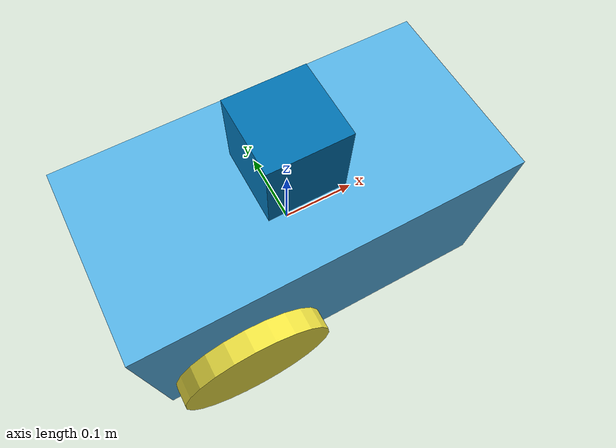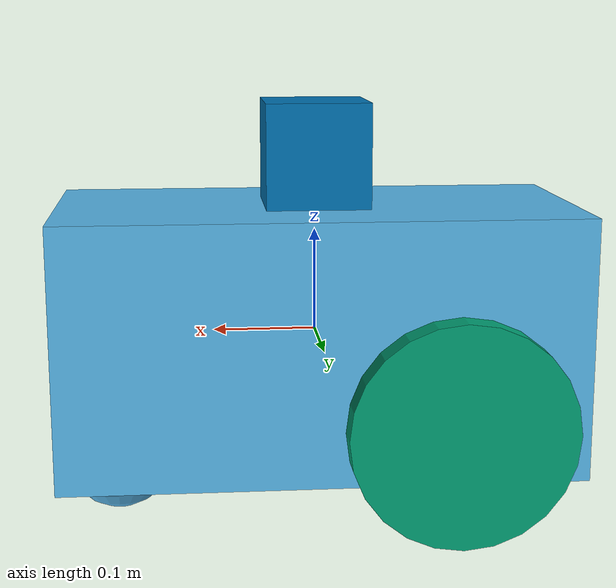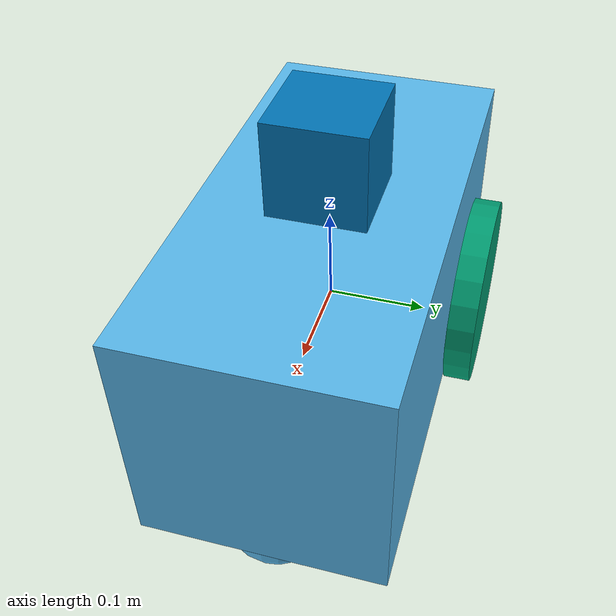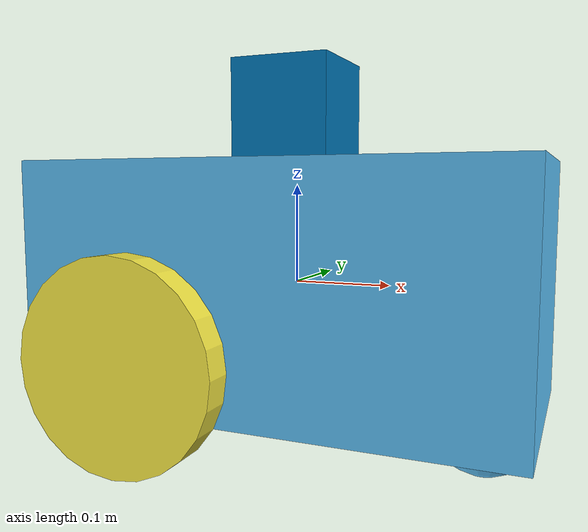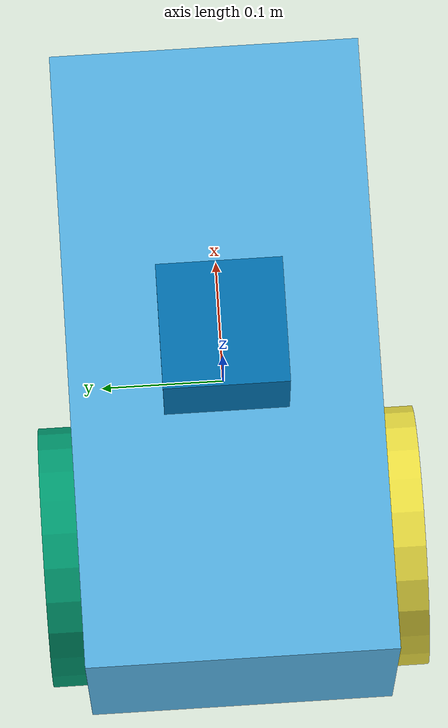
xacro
<?xml version="1.0"?>

<!--name space and start xacro-->
<robot name ="navigation_robot" xmlns:xacro="http://www.ros.org/wiki/xacro">

	<!--Include all required xacro files-->
	<xacro:include filename="$(find simulation_environment)/models/Navigation_Robot/Navigation_robot.gazebo"/>
	<xacro:include filename="$(find simulation_environment)/models/Navigation_Robot/materials.xacro"/>
	<xacro:include filename="$(find simulation_environment)/models/Navigation_Robot/macros.xacro"/>
	<xacro:include filename="$(find simulation_environment)/models/Navigation_Robot/parameters.xacro"/>

	<!--Create dummy link-->
	<link name='base_link'>
		<pose>0 0 0 0 0 0</pose>
	</link>
	<joint type="fixed" name="base_link_to_chassis">
		<child link="chassis_link"/>
		<parent link="base_link"/>
	</joint>

	<!--Define the chassis of the robot-->
	<link name='chassis_link'>
		<pose>0 0 0 0 0 0</pose>

		<!--Define inertial system for chassis-->
		<inertial>
			<mass value="${m_chassis}"/>
			<xacro:box_inertia m="${m_chassis}" x="${x_chassis}" y="${y_chassis}" z="${z_chassis}"/>
		</inertial>

		<!--Define collision sorrounding box -->
		<collision name="collision">
			<origin xyz="0 0 0" rpy="0 0 0"/>
			<geometry>
				<box size="${x_chassis} ${y_chassis} ${z_chassis}"/>
			</geometry>
		</collision>

		<!--Define visuals-->
		<visual name="base_link_visual">
			<origin xyz="0 0 0" rpy="0 0 0"/>
			<geometry>
				<box size="${x_chassis} ${y_chassis} ${z_chassis}"/>
			</geometry>
		</visual>

		<!--add caster wheel with zero friction-->
		<collision name="caster_collision">
			<origin xyz="${-(r_wheel/2)+x_chassis/2} 0 ${-z_chassis/2}" rpy="0 0 0"/>
			<geometry>
				<sphere radius="${r_wheel/2}"/>
			</geometry>
			<surface>
				<friction>
					<ode>
						<mu>0</mu>
						<mu2>0</mu2>
						<slip1>1.0</slip1>
						<slip2>1.0</slip2>
					</ode>
				</friction>
			</surface>
		</collision>

		<!--visuals for wheel-->
		<visual name="caster_visual">
			<origin xyz="${-(r_wheel/2)+x_chassis/2} 0 ${-z_chassis/2}" rpy="0 0 0"/>
			<geometry>
				<sphere radius="${r_wheel/2}"/>
			</geometry>
		</visual>
	</link>

	<!--add left wheel-->
	<link name="left_wheel">
		<collision>
			<origin xyz="0 0 0" rpy="0 1.5707 1.5707"/>
			<geometry>
				<cylinder radius="${r_wheel}" length="${h_wheel}"/>
			</geometry>
			<surface>
				<friction>
					<ode>
						<mu>0</mu>
						<mu2>0</mu2>
						<slip1>1.0</slip1>
						<slip2>1.0</slip2>
					</ode>
				</friction>
			</surface>
		</collision>

		<!--visual for the left wheel-->
		<visual name="left_wheel_visual">
			<origin xyz="0 0 0" rpy="0 1.5707 1.5707"/>
			<geometry>
				<cylinder radius="${r_wheel}" length="${h_wheel}"/>
			</geometry>
		</visual>

		<!--inerti for the left wheel-->
		<inertial>
			<origin xyz="0 0 0" rpy="0 1.5707 1.5707"/>
			<mass value="${m_wheel}"/>
			<cylinder_inertia m="${m_wheel}" r="${r_wheel}" h="${h_wheel}"/>
			<xacro:cylinder_inertia m="${m_wheel}" r="${r_wheel}" h="${h_wheel}"/>
		</inertial>
	</link>

	<!--add right wheel-->
	<link name="right_wheel">
		<collision>
			<origin xyz="0 0 0" rpy="0 1.5707 1.5707"/>
			<geometry>
				<cylinder radius="${r_wheel}" length="${h_wheel}"/>
			</geometry>
			<surface>
				<friction>
					<ode>
						<mu>0</mu>
						<mu2>0</mu2>
						<slip1>1.0</slip1>
						<slip2>1.0</slip2>
					</ode>
				</friction>
			</surface>
		</collision>

		<!--visual for the right wheel-->
		<visual name="left_wheel_visual">
			<origin xyz="0 0 0" rpy="0 1.5707 1.5707"/>
			<geometry>
				<cylinder radius="${r_wheel}" length="${h_wheel}"/>
			</geometry>
		</visual>

		<!--inerti for the right wheel-->
		<inertial>
			<origin xyz="0 0 0" rpy="0 1.5707 1.5707"/>
			<mass value="${m_wheel}"/>
			<cylinder_inertia m="${m_wheel}" r="${r_wheel}" h="${h_wheel}"/>
			<xacro:cylinder_inertia m="${m_wheel}" r="${r_wheel}" h="${h_wheel}"/>
		</inertial>
	</link>

	<!--Set joints for the wheel to control with ROS-->
	<joint type="continuous" name="left_wheel_hinge">
		<origin xyz="${-x_chassis/4} ${y_chassis/2+h_wheel/2} ${r_wheel/2-z_chassis/2}" rpy="0 0 0"/>
		<child link="left_wheel"/>
		<parent link="base_link"/>
		<axis xyz="0 1 0" rpy="0 0 0"/>
		<limit effort="100" velocity="100"/>
		<joint_properties damping="0.0" friction="0.0"/>
	</joint>

	<joint type="continuous" name="right_wheel_hinge">
		<origin xyz="${-x_chassis/4} ${-y_chassis/2-h_wheel/2} ${r_wheel/2-z_chassis/2}" rpy="0 0 0"/>
		<child link="right_wheel"/>
		<parent link="base_link"/>
		<axis xyz="0 1 0" rpy="0 0 0"/>
		<limit effort="100" velocity="100"/>
		<joint_properties damping="0.0" friction="0.0"/>
	</joint>

	<!--add a hokuyo laser-->
	<link name="laser_link">
		<collision>
			<origin xyz="0 0 0" rpy="0 0 0"/>
			<geometry>
				<box size="${x_hokuyo} ${y_hokuyo} ${z_hokuyo}"/>
			</geometry>
		</collision>
		<visual>
			<origin xyz="0 0 0" rpy="0 0 0"/>
			<geometry>
				<box size="${x_hokuyo} ${y_hokuyo} ${z_hokuyo}"/>
			</geometry>
		</visual>
		<inertial>
			<mass value="1e-5"/>
			<origin xyz="0 0 0" rpy="0 0 0"/>
			<inertia ixx="1e-6" ixy="0" ixz="0" iyy="1e-6" iyz="0" izz="1e-6"/>
		</inertial>
	</link>

	<joint name="hokuyo_joint" type="fixed">
		<axis xyz="0 1 0"/>
		<origin xyz="0 0 ${z_chassis/2+z_hokuyo/2}" rpy="0 0 0"/>
		<parent link="base_link"/>
		<child link="laser_link"/>
	</joint>

</robot>

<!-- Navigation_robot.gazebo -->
<robot xmlns:xacro="http://www.ros.org/wiki/xacro">
	<xacro:include filename="$(find simulation_environment)/models/Navigation_Robot/parameters.xacro"/>

	<!--Differential drive controller from Gazebo-->
	<gazebo>
		<plugin name="differential_drive_controller" filename="libgazebo_ros_diff_drive.so">
			<alwaysOn>true</alwaysOn>
			<updateRate>20</updateRate>
			<leftJoint>left_wheel_hinge</leftJoint>
			<rightJoint>right_wheel_hinge</rightJoint>
			<wheelSeparation>${L_wheel*2}</wheelSeparation>
			<wheelDiameter>${r_wheel*2}</wheelDiameter>
			<torque>20</torque>
			<commandTopic>cmd_vel</commandTopic>
			<odometryTopic>odom</odometryTopic>
			<odometryFrame>odom_link</odometryFrame>
			<robotBaseFrame>base_link</robotBaseFrame>
			<legacyMode>false</legacyMode>
		</plugin>
	</gazebo>

	<!--hokuyo laser plugin-->
	<gazebo reference="laser_link">
		<sensor type="ray" name="head_hokuyo_sensor">
			<pose>0 0 0 0 0 0</pose>
			<visualize>true</visualize>
			<update_rate>20</update_rate>
			<ray>
				<scan>
					<horizontal>
						<samples>720</samples>
						<resolution>1</resolution>
						<min_angle>-1.570796</min_angle>
						<max_angle>1.570796</max_angle>
					</horizontal>
				</scan>
				<range>
					<min>0.1</min>
					<max>10.0</max>
					<resolution>0.1</resolution>
				</range>
				<noise>
					<type>gaussian</type>
					<mean>0.0</mean>
					<stddev>0.1</stddev>
				</noise>
			</ray>
			<plugin name="gazebo_ros_head_hokuyo_controller" filename="libgazebo_ros_laser.so">
				<topicName>/scan</topicName>
				<frameName>/laser_link</frameName>
			</plugin>
		</sensor>
	</gazebo>

	<!--paint the robot-->
	<gazebo reference="base_link">
		<material>Gazebo/Orange</material>
	</gazebo>
</robot>

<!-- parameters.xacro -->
<robot xmlns:xacro="http://www.ros.org/wiki/xacro">

    <xacro:property name="x_chassis" value="0.5"/>
    <xacro:property name="y_chassis" value="0.25"/>
    <xacro:property name="z_chassis" value="0.25"/>
    <xacro:property name="m_chassis" value="5"/>

    <xacro:property name="r_wheel" value="0.1075"/>
    <xacro:property name="h_wheel" value="0.03"/>
    <xacro:property name="m_wheel" value="3.0"/>
    <xacro:property name="torque_wheel" value="10"/>
    <xacro:property name="L_wheel" value="0.1788"/>

    <!--hokuyo sensor-->
    <xacro:property name="x_hokuyo" value ="0.1"/>
    <xacro:property name="y_hokuyo" value ="0.1"/>
    <xacro:property name="z_hokuyo" value ="0.1"/>

</robot>

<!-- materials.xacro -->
<robot xmlns:xacro="http://www.ros.org/wiki/xacro">

    <material name="orange">
        <color rgba="${255/255} ${108/255} ${10/255} 1.0"/>
    </material>

</robot>

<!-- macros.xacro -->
<robot xmlns:xacro="http://www.ros.org/wiki/xacro">

    <xacro:macro name="box_inertia" params="m x y z">
        <inertia
            ixx="${m*(y*y+z*z)/12}" ixy = "0" ixz = "0"
            iyy="${m*(x*x+z*z)/12}" iyz = "0"
            izz="${m*(x*x+y*y)/12}"
        />
    </xacro:macro>

    <xacro:macro name="cylinder_inertia" params="m r h">
        <inertia
            ixx="${m*(3*r+h*h)/12}" ixy = "0" ixz = "0"
            iyy="${m*(3*r+h*h)/12}" iyz = "0"
            izz="${m*r*r/2}"
        />
    </xacro:macro>

</robot>
